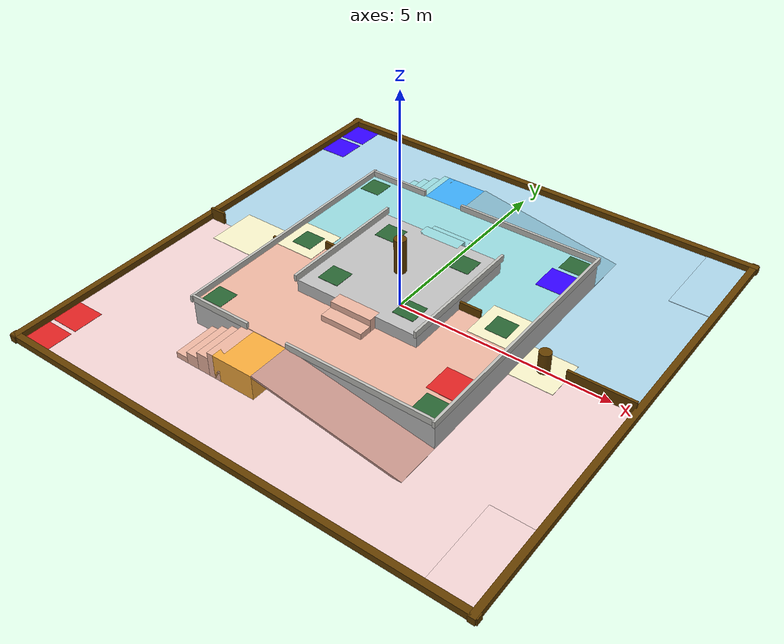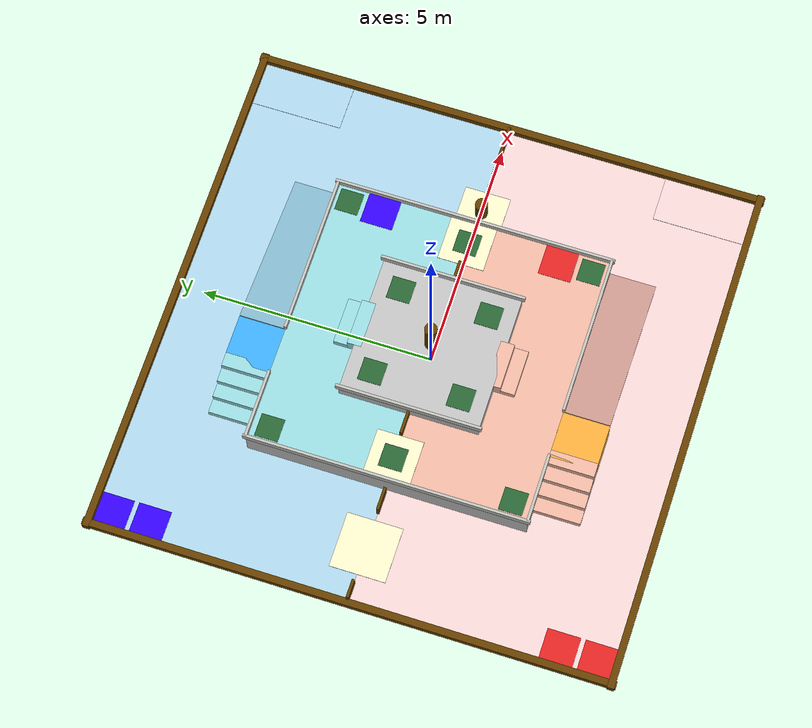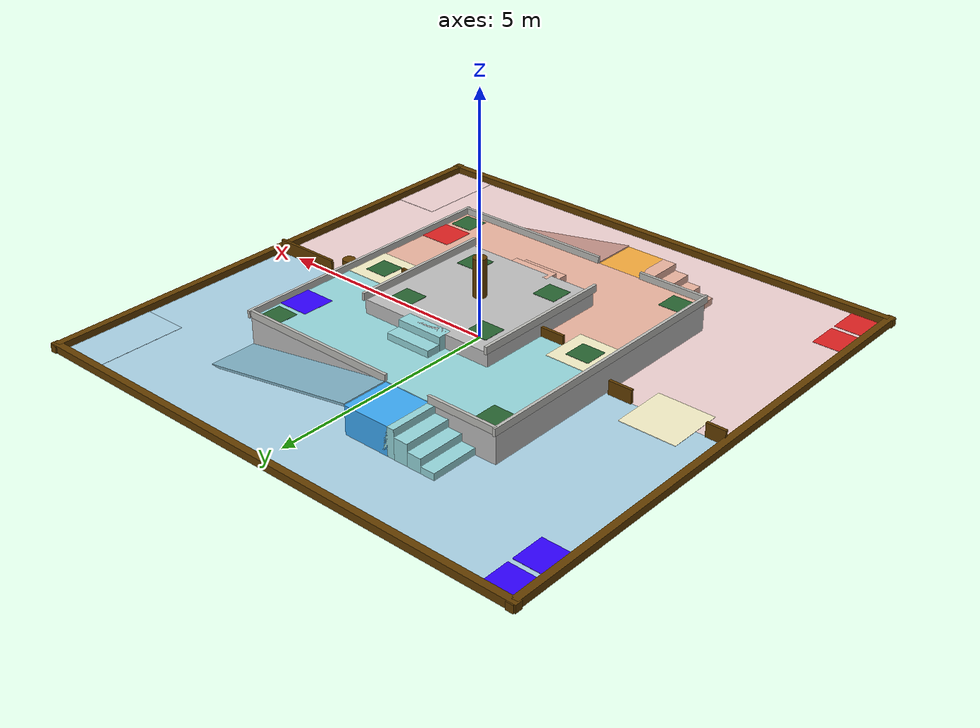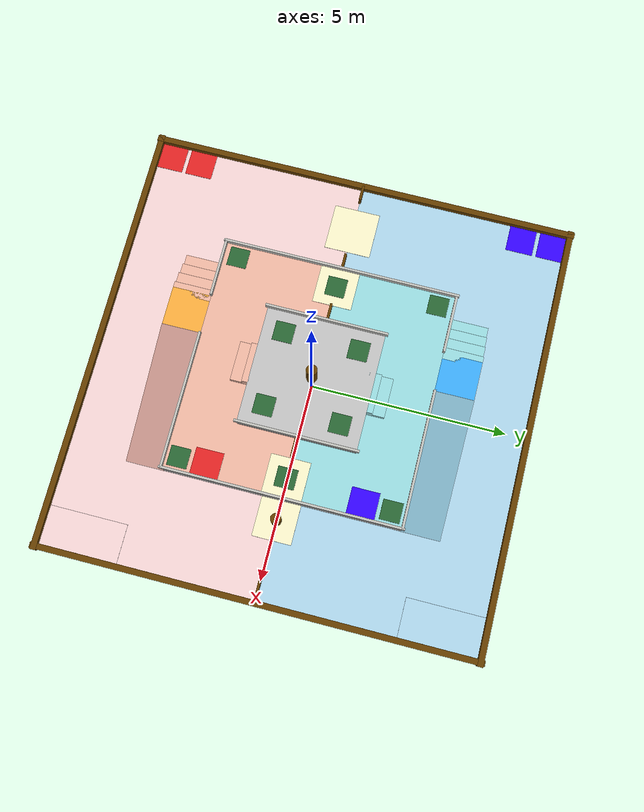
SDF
<?xml version="1.0"?>
<sdf version="1.9">
  <world name="nhk27_field">
    <physics name="1ms" type="ignore">
      <max_step_size>0.001</max_step_size>
      <real_time_factor>1.0</real_time_factor>
    </physics>
    <plugin filename="gz-sim-physics-system" name="gz::sim::systems::Physics"/>
    <plugin filename="gz-sim-user-commands-system" name="gz::sim::systems::UserCommands"/>
    <plugin filename="gz-sim-scene-broadcaster-system" name="gz::sim::systems::SceneBroadcaster"/>
    <plugin filename="gz-sim-contact-system" name="gz::sim::systems::Contact"/>

    <light type="directional" name="sun">
      <cast_shadows>true</cast_shadows>
      <pose>0 0 10 0 0 0</pose>
      <diffuse>0.8 0.8 0.8 1</diffuse>
      <specular>0.2 0.2 0.2 1</specular>
      <direction>-0.5 0.1 -0.9</direction>
    </light>

    <model name="ground_base">
      <static>true</static>
      <pose>0 0 -0.025 0.0 0.0 0.0</pose>
      <link name="link">
        <collision name="collision">
          <geometry><box><size>11.0 11.0 0.05</size></box></geometry>
        </collision>
        <visual name="visual">
          <geometry><box><size>11.0 11.0 0.05</size></box></geometry>
          <material>
            <ambient>0.23 0.18 0.13 1.0</ambient>
            <diffuse>0.23 0.18 0.13 1.0</diffuse>
          </material>
        </visual>
      </link>
    </model>
    <model name="ground_red">
      <static>true</static>
      <pose>0 -2.75 0.006 0.0 0.0 0.0</pose>
      <link name="link">
        <visual name="visual">
          <geometry><box><size>11.0 5.5 0.01</size></box></geometry>
          <material>
            <ambient>0.9411764705882353 0.8235294117647058 0.8235294117647058 1.0</ambient>
            <diffuse>0.9411764705882353 0.8235294117647058 0.8235294117647058 1.0</diffuse>
          </material>
        </visual>
      </link>
    </model>
    <model name="ground_blue">
      <static>true</static>
      <pose>0 2.75 0.006 0.0 0.0 0.0</pose>
      <link name="link">
        <visual name="visual">
          <geometry><box><size>11.0 5.5 0.01</size></box></geometry>
          <material>
            <ambient>0.6666666666666666 0.8235294117647058 0.9019607843137255 1.0</ambient>
            <diffuse>0.6666666666666666 0.8235294117647058 0.9019607843137255 1.0</diffuse>
          </material>
        </visual>
      </link>
    </model>
    <model name="field_boundary_north">
      <static>true</static>
      <pose>5.55 0 0.08 0.0 0.0 0.0</pose>
      <link name="link">
        <collision name="collision">
          <geometry><box><size>0.15 11.3 0.16</size></box></geometry>
        </collision>
        <visual name="visual">
          <geometry><box><size>0.15 11.3 0.16</size></box></geometry>
          <material>
            <ambient>0.39215686274509803 0.24313725490196078 0.0 1.0</ambient>
            <diffuse>0.39215686274509803 0.24313725490196078 0.0 1.0</diffuse>
          </material>
        </visual>
      </link>
    </model>
    <model name="field_boundary_south">
      <static>true</static>
      <pose>-5.55 0 0.08 0.0 0.0 0.0</pose>
      <link name="link">
        <collision name="collision">
          <geometry><box><size>0.15 11.3 0.16</size></box></geometry>
        </collision>
        <visual name="visual">
          <geometry><box><size>0.15 11.3 0.16</size></box></geometry>
          <material>
            <ambient>0.39215686274509803 0.24313725490196078 0.0 1.0</ambient>
            <diffuse>0.39215686274509803 0.24313725490196078 0.0 1.0</diffuse>
          </material>
        </visual>
      </link>
    </model>
    <model name="field_boundary_east">
      <static>true</static>
      <pose>0 5.55 0.08 0.0 0.0 0.0</pose>
      <link name="link">
        <collision name="collision">
          <geometry><box><size>11.3 0.15 0.16</size></box></geometry>
        </collision>
        <visual name="visual">
          <geometry><box><size>11.3 0.15 0.16</size></box></geometry>
          <material>
            <ambient>0.39215686274509803 0.24313725490196078 0.0 1.0</ambient>
            <diffuse>0.39215686274509803 0.24313725490196078 0.0 1.0</diffuse>
          </material>
        </visual>
      </link>
    </model>
    <model name="field_boundary_west">
      <static>true</static>
      <pose>0 -5.55 0.08 0.0 0.0 0.0</pose>
      <link name="link">
        <collision name="collision">
          <geometry><box><size>11.3 0.15 0.16</size></box></geometry>
        </collision>
        <visual name="visual">
          <geometry><box><size>11.3 0.15 0.16</size></box></geometry>
          <material>
            <ambient>0.39215686274509803 0.24313725490196078 0.0 1.0</ambient>
            <diffuse>0.39215686274509803 0.24313725490196078 0.0 1.0</diffuse>
          </material>
        </visual>
      </link>
    </model>
    <model name="level1_structure">
      <static>true</static>
      <pose>0 0 0.3 0.0 0.0 0.0</pose>
      <link name="link">
        <collision name="collision">
          <geometry><box><size>6.0 6.0 0.6</size></box></geometry>
        </collision>
        <visual name="visual">
          <geometry><box><size>6.0 6.0 0.6</size></box></geometry>
          <material>
            <ambient>0.7450980392156863 0.7450980392156863 0.7450980392156863 1.0</ambient>
            <diffuse>0.7450980392156863 0.7450980392156863 0.7450980392156863 1.0</diffuse>
          </material>
        </visual>
      </link>
    </model>
    <model name="level1_red">
      <static>true</static>
      <pose>0 -1.5 0.606 0.0 0.0 0.0</pose>
      <link name="link">
        <visual name="visual">
          <geometry><box><size>6.0 3.0 0.01</size></box></geometry>
          <material>
            <ambient>0.9215686274509803 0.7058823529411765 0.6274509803921569 1.0</ambient>
            <diffuse>0.9215686274509803 0.7058823529411765 0.6274509803921569 1.0</diffuse>
          </material>
        </visual>
      </link>
    </model>
    <model name="level1_blue">
      <static>true</static>
      <pose>0 1.5 0.606 0.0 0.0 0.0</pose>
      <link name="link">
        <visual name="visual">
          <geometry><box><size>6.0 3.0 0.01</size></box></geometry>
          <material>
            <ambient>0.5882352941176471 0.8431372549019608 0.8627450980392157 1.0</ambient>
            <diffuse>0.5882352941176471 0.8431372549019608 0.8627450980392157 1.0</diffuse>
          </material>
        </visual>
      </link>
    </model>
    <model name="level2_structure">
      <static>true</static>
      <pose>0 0 0.75 0.0 0.0 0.0</pose>
      <link name="link">
        <collision name="collision">
          <geometry><box><size>3.0 3.0 0.30000000000000004</size></box></geometry>
        </collision>
        <visual name="visual">
          <geometry><box><size>3.0 3.0 0.30000000000000004</size></box></geometry>
          <material>
            <ambient>0.7450980392156863 0.7450980392156863 0.7450980392156863 1.0</ambient>
            <diffuse>0.7450980392156863 0.7450980392156863 0.7450980392156863 1.0</diffuse>
          </material>
        </visual>
      </link>
    </model>
    <model name="central_pillar">
      <static>true</static>
      <pose>0 0 1.3 0 0 0</pose>
      <link name="link">
        <collision name="collision">
          <geometry><cylinder><radius>0.135</radius><length>0.8</length></cylinder></geometry>
        </collision>
        <visual name="visual">
          <geometry><cylinder><radius>0.135</radius><length>0.8</length></cylinder></geometry>
          <material>
            <ambient>0.39215686274509803 0.24313725490196078 0.0 1.0</ambient>
            <diffuse>0.39215686274509803 0.24313725490196078 0.0 1.0</diffuse>
          </material>
        </visual>
      </link>
    </model>
    <model name="mustika_pad">
      <static>true</static>
      <pose>3.5 0.0 0.014 0.0 0.0 0.0</pose>
      <link name="link">
        <visual name="visual">
          <geometry><box><size>1.0 1.0 0.01</size></box></geometry>
          <material>
            <ambient>0.9607843137254902 0.9411764705882353 0.7843137254901961 1.0</ambient>
            <diffuse>0.9607843137254902 0.9411764705882353 0.7843137254901961 1.0</diffuse>
          </material>
        </visual>
      </link>
    </model>
    <model name="mustika_pillar">
      <static>true</static>
      <pose>3.5 0 0.25 0 0 0</pose>
      <link name="link">
        <collision name="collision">
          <geometry><cylinder><radius>0.135</radius><length>0.5</length></cylinder></geometry>
        </collision>
        <visual name="visual">
          <geometry><cylinder><radius>0.135</radius><length>0.5</length></cylinder></geometry>
          <material>
            <ambient>0.39215686274509803 0.24313725490196078 0.0 1.0</ambient>
            <diffuse>0.39215686274509803 0.24313725490196078 0.0 1.0</diffuse>
          </material>
        </visual>
      </link>
    </model>
    <model name="ramp_red">
      <static>true</static>
      <pose>1.25 -3.5 0.3 0.0 0.16977827396833844 0.0</pose>
      <link name="link">
        <collision name="collision">
          <geometry><box><size>3.5510561809129406 1.0 0.05</size></box></geometry>
        </collision>
        <visual name="visual">
          <geometry><box><size>3.5510561809129406 1.0 0.05</size></box></geometry>
          <material>
            <ambient>0.7843137254901961 0.5882352941176471 0.5490196078431373 1.0</ambient>
            <diffuse>0.7843137254901961 0.5882352941176471 0.5490196078431373 1.0</diffuse>
          </material>
        </visual>
      </link>
    </model>
    <model name="transfer_area_red">
      <static>true</static>
      <pose>-1.0 -3.5 0.3 0.0 0.0 0.0</pose>
      <link name="link">
        <collision name="collision">
          <geometry><box><size>1.0 1.0 0.6</size></box></geometry>
        </collision>
        <visual name="visual">
          <geometry><box><size>1.0 1.0 0.6</size></box></geometry>
          <material>
            <ambient>0.9607843137254902 0.6666666666666666 0.23529411764705882 1.0</ambient>
            <diffuse>0.9607843137254902 0.6666666666666666 0.23529411764705882 1.0</diffuse>
          </material>
        </visual>
      </link>
    </model>
    <model name="stairs_g2l1_red_step1">
      <static>true</static>
      <pose>-2.4 -3.5 0.075 0.0 0.0 0.0</pose>
      <link name="link">
        <collision name="collision">
          <geometry><box><size>0.3 1.0 0.15</size></box></geometry>
        </collision>
        <visual name="visual">
          <geometry><box><size>0.3 1.0 0.15</size></box></geometry>
          <material>
            <ambient>0.9215686274509803 0.7058823529411765 0.6274509803921569 1.0</ambient>
            <diffuse>0.9215686274509803 0.7058823529411765 0.6274509803921569 1.0</diffuse>
          </material>
        </visual>
      </link>
    </model>
    <model name="stairs_g2l1_red_step2">
      <static>true</static>
      <pose>-2.1 -3.5 0.15 0.0 0.0 0.0</pose>
      <link name="link">
        <collision name="collision">
          <geometry><box><size>0.3 1.0 0.3</size></box></geometry>
        </collision>
        <visual name="visual">
          <geometry><box><size>0.3 1.0 0.3</size></box></geometry>
          <material>
            <ambient>0.9215686274509803 0.7058823529411765 0.6274509803921569 1.0</ambient>
            <diffuse>0.9215686274509803 0.7058823529411765 0.6274509803921569 1.0</diffuse>
          </material>
        </visual>
      </link>
    </model>
    <model name="stairs_g2l1_red_step3">
      <static>true</static>
      <pose>-1.8 -3.5 0.22499999999999998 0.0 0.0 0.0</pose>
      <link name="link">
        <collision name="collision">
          <geometry><box><size>0.3 1.0 0.44999999999999996</size></box></geometry>
        </collision>
        <visual name="visual">
          <geometry><box><size>0.3 1.0 0.44999999999999996</size></box></geometry>
          <material>
            <ambient>0.9215686274509803 0.7058823529411765 0.6274509803921569 1.0</ambient>
            <diffuse>0.9215686274509803 0.7058823529411765 0.6274509803921569 1.0</diffuse>
          </material>
        </visual>
      </link>
    </model>
    <model name="stairs_g2l1_red_step4">
      <static>true</static>
      <pose>-1.5 -3.5 0.3 0.0 0.0 0.0</pose>
      <link name="link">
        <collision name="collision">
          <geometry><box><size>0.3 1.0 0.6</size></box></geometry>
        </collision>
        <visual name="visual">
          <geometry><box><size>0.3 1.0 0.6</size></box></geometry>
          <material>
            <ambient>0.9215686274509803 0.7058823529411765 0.6274509803921569 1.0</ambient>
            <diffuse>0.9215686274509803 0.7058823529411765 0.6274509803921569 1.0</diffuse>
          </material>
        </visual>
      </link>
    </model>
    <model name="ramp_blue">
      <static>true</static>
      <pose>1.25 3.5 0.3 0.0 0.16977827396833844 0.0</pose>
      <link name="link">
        <collision name="collision">
          <geometry><box><size>3.5510561809129406 1.0 0.05</size></box></geometry>
        </collision>
        <visual name="visual">
          <geometry><box><size>3.5510561809129406 1.0 0.05</size></box></geometry>
          <material>
            <ambient>0.5098039215686274 0.7058823529411765 0.7843137254901961 1.0</ambient>
            <diffuse>0.5098039215686274 0.7058823529411765 0.7843137254901961 1.0</diffuse>
          </material>
        </visual>
      </link>
    </model>
    <model name="transfer_area_blue">
      <static>true</static>
      <pose>-1.0 3.5 0.3 0.0 0.0 0.0</pose>
      <link name="link">
        <collision name="collision">
          <geometry><box><size>1.0 1.0 0.6</size></box></geometry>
        </collision>
        <visual name="visual">
          <geometry><box><size>1.0 1.0 0.6</size></box></geometry>
          <material>
            <ambient>0.23529411764705882 0.6666666666666666 0.9607843137254902 1.0</ambient>
            <diffuse>0.23529411764705882 0.6666666666666666 0.9607843137254902 1.0</diffuse>
          </material>
        </visual>
      </link>
    </model>
    <model name="stairs_g2l1_blue_step1">
      <static>true</static>
      <pose>-2.4 3.5 0.075 0.0 0.0 0.0</pose>
      <link name="link">
        <collision name="collision">
          <geometry><box><size>0.3 1.0 0.15</size></box></geometry>
        </collision>
        <visual name="visual">
          <geometry><box><size>0.3 1.0 0.15</size></box></geometry>
          <material>
            <ambient>0.5882352941176471 0.8431372549019608 0.8627450980392157 1.0</ambient>
            <diffuse>0.5882352941176471 0.8431372549019608 0.8627450980392157 1.0</diffuse>
          </material>
        </visual>
      </link>
    </model>
    <model name="stairs_g2l1_blue_step2">
      <static>true</static>
      <pose>-2.1 3.5 0.15 0.0 0.0 0.0</pose>
      <link name="link">
        <collision name="collision">
          <geometry><box><size>0.3 1.0 0.3</size></box></geometry>
        </collision>
        <visual name="visual">
          <geometry><box><size>0.3 1.0 0.3</size></box></geometry>
          <material>
            <ambient>0.5882352941176471 0.8431372549019608 0.8627450980392157 1.0</ambient>
            <diffuse>0.5882352941176471 0.8431372549019608 0.8627450980392157 1.0</diffuse>
          </material>
        </visual>
      </link>
    </model>
    <model name="stairs_g2l1_blue_step3">
      <static>true</static>
      <pose>-1.8 3.5 0.22499999999999998 0.0 0.0 0.0</pose>
      <link name="link">
        <collision name="collision">
          <geometry><box><size>0.3 1.0 0.44999999999999996</size></box></geometry>
        </collision>
        <visual name="visual">
          <geometry><box><size>0.3 1.0 0.44999999999999996</size></box></geometry>
          <material>
            <ambient>0.5882352941176471 0.8431372549019608 0.8627450980392157 1.0</ambient>
            <diffuse>0.5882352941176471 0.8431372549019608 0.8627450980392157 1.0</diffuse>
          </material>
        </visual>
      </link>
    </model>
    <model name="stairs_g2l1_blue_step4">
      <static>true</static>
      <pose>-1.5 3.5 0.3 0.0 0.0 0.0</pose>
      <link name="link">
        <collision name="collision">
          <geometry><box><size>0.3 1.0 0.6</size></box></geometry>
        </collision>
        <visual name="visual">
          <geometry><box><size>0.3 1.0 0.6</size></box></geometry>
          <material>
            <ambient>0.5882352941176471 0.8431372549019608 0.8627450980392157 1.0</ambient>
            <diffuse>0.5882352941176471 0.8431372549019608 0.8627450980392157 1.0</diffuse>
          </material>
        </visual>
      </link>
    </model>
    <model name="stairs_l1l2_red_step1">
      <static>true</static>
      <pose>0.0 -1.8 0.375 0.0 0.0 0.0</pose>
      <link name="link">
        <collision name="collision">
          <geometry><box><size>1.0 0.3 0.75</size></box></geometry>
        </collision>
        <visual name="visual">
          <geometry><box><size>1.0 0.3 0.75</size></box></geometry>
          <material>
            <ambient>0.9215686274509803 0.7058823529411765 0.6274509803921569 1.0</ambient>
            <diffuse>0.9215686274509803 0.7058823529411765 0.6274509803921569 1.0</diffuse>
          </material>
        </visual>
      </link>
    </model>
    <model name="stairs_l1l2_red_step2">
      <static>true</static>
      <pose>0.0 -1.5 0.44999999999999996 0.0 0.0 0.0</pose>
      <link name="link">
        <collision name="collision">
          <geometry><box><size>1.0 0.3 0.8999999999999999</size></box></geometry>
        </collision>
        <visual name="visual">
          <geometry><box><size>1.0 0.3 0.8999999999999999</size></box></geometry>
          <material>
            <ambient>0.9215686274509803 0.7058823529411765 0.6274509803921569 1.0</ambient>
            <diffuse>0.9215686274509803 0.7058823529411765 0.6274509803921569 1.0</diffuse>
          </material>
        </visual>
      </link>
    </model>
    <model name="stairs_l1l2_blue_step1">
      <static>true</static>
      <pose>0.0 1.8 0.375 0.0 0.0 0.0</pose>
      <link name="link">
        <collision name="collision">
          <geometry><box><size>1.0 0.3 0.75</size></box></geometry>
        </collision>
        <visual name="visual">
          <geometry><box><size>1.0 0.3 0.75</size></box></geometry>
          <material>
            <ambient>0.5882352941176471 0.8431372549019608 0.8627450980392157 1.0</ambient>
            <diffuse>0.5882352941176471 0.8431372549019608 0.8627450980392157 1.0</diffuse>
          </material>
        </visual>
      </link>
    </model>
    <model name="stairs_l1l2_blue_step2">
      <static>true</static>
      <pose>0.0 1.5 0.44999999999999996 0.0 0.0 0.0</pose>
      <link name="link">
        <collision name="collision">
          <geometry><box><size>1.0 0.3 0.8999999999999999</size></box></geometry>
        </collision>
        <visual name="visual">
          <geometry><box><size>1.0 0.3 0.8999999999999999</size></box></geometry>
          <material>
            <ambient>0.5882352941176471 0.8431372549019608 0.8627450980392157 1.0</ambient>
            <diffuse>0.5882352941176471 0.8431372549019608 0.8627450980392157 1.0</diffuse>
          </material>
        </visual>
      </link>
    </model>
    <model name="l1_barrier_north">
      <static>true</static>
      <pose>3.0 0.0 0.6749999999999999 0.0 0.0 0.0</pose>
      <link name="link">
        <collision name="collision">
          <geometry><box><size>0.06 6.12 0.15</size></box></geometry>
        </collision>
        <visual name="visual">
          <geometry><box><size>0.06 6.12 0.15</size></box></geometry>
          <material>
            <ambient>0.7450980392156863 0.7450980392156863 0.7254901960784313 1.0</ambient>
            <diffuse>0.7450980392156863 0.7450980392156863 0.7254901960784313 1.0</diffuse>
          </material>
        </visual>
      </link>
    </model>
    <model name="l1_barrier_south">
      <static>true</static>
      <pose>-3.0 0.0 0.6749999999999999 0.0 0.0 0.0</pose>
      <link name="link">
        <collision name="collision">
          <geometry><box><size>0.06 6.12 0.15</size></box></geometry>
        </collision>
        <visual name="visual">
          <geometry><box><size>0.06 6.12 0.15</size></box></geometry>
          <material>
            <ambient>0.7450980392156863 0.7450980392156863 0.7254901960784313 1.0</ambient>
            <diffuse>0.7450980392156863 0.7450980392156863 0.7254901960784313 1.0</diffuse>
          </material>
        </visual>
      </link>
    </model>
    <model name="l1_barrier_west_south">
      <static>true</static>
      <pose>-2.25 -3.0 0.6749999999999999 0.0 0.0 0.0</pose>
      <link name="link">
        <collision name="collision">
          <geometry><box><size>1.5 0.06 0.15</size></box></geometry>
        </collision>
        <visual name="visual">
          <geometry><box><size>1.5 0.06 0.15</size></box></geometry>
          <material>
            <ambient>0.7450980392156863 0.7450980392156863 0.7254901960784313 1.0</ambient>
            <diffuse>0.7450980392156863 0.7450980392156863 0.7254901960784313 1.0</diffuse>
          </material>
        </visual>
      </link>
    </model>
    <model name="l1_barrier_west_north">
      <static>true</static>
      <pose>1.25 -3.0 0.6749999999999999 0.0 0.0 0.0</pose>
      <link name="link">
        <collision name="collision">
          <geometry><box><size>3.5 0.06 0.15</size></box></geometry>
        </collision>
        <visual name="visual">
          <geometry><box><size>3.5 0.06 0.15</size></box></geometry>
          <material>
            <ambient>0.7450980392156863 0.7450980392156863 0.7254901960784313 1.0</ambient>
            <diffuse>0.7450980392156863 0.7450980392156863 0.7254901960784313 1.0</diffuse>
          </material>
        </visual>
      </link>
    </model>
    <model name="l1_barrier_east_south">
      <static>true</static>
      <pose>-2.25 3.0 0.6749999999999999 0.0 0.0 0.0</pose>
      <link name="link">
        <collision name="collision">
          <geometry><box><size>1.5 0.06 0.15</size></box></geometry>
        </collision>
        <visual name="visual">
          <geometry><box><size>1.5 0.06 0.15</size></box></geometry>
          <material>
            <ambient>0.7450980392156863 0.7450980392156863 0.7254901960784313 1.0</ambient>
            <diffuse>0.7450980392156863 0.7450980392156863 0.7254901960784313 1.0</diffuse>
          </material>
        </visual>
      </link>
    </model>
    <model name="l1_barrier_east_north">
      <static>true</static>
      <pose>1.25 3.0 0.6749999999999999 0.0 0.0 0.0</pose>
      <link name="link">
        <collision name="collision">
          <geometry><box><size>3.5 0.06 0.15</size></box></geometry>
        </collision>
        <visual name="visual">
          <geometry><box><size>3.5 0.06 0.15</size></box></geometry>
          <material>
            <ambient>0.7450980392156863 0.7450980392156863 0.7254901960784313 1.0</ambient>
            <diffuse>0.7450980392156863 0.7450980392156863 0.7254901960784313 1.0</diffuse>
          </material>
        </visual>
      </link>
    </model>
    <model name="l2_wall_north">
      <static>true</static>
      <pose>1.5 0.0 0.975 0.0 0.0 0.0</pose>
      <link name="link">
        <collision name="collision">
          <geometry><box><size>0.06 3.12 0.15</size></box></geometry>
        </collision>
        <visual name="visual">
          <geometry><box><size>0.06 3.12 0.15</size></box></geometry>
          <material>
            <ambient>0.7450980392156863 0.7450980392156863 0.7254901960784313 1.0</ambient>
            <diffuse>0.7450980392156863 0.7450980392156863 0.7254901960784313 1.0</diffuse>
          </material>
        </visual>
      </link>
    </model>
    <model name="l2_wall_south">
      <static>true</static>
      <pose>-1.5 0.0 0.975 0.0 0.0 0.0</pose>
      <link name="link">
        <collision name="collision">
          <geometry><box><size>0.06 3.12 0.15</size></box></geometry>
        </collision>
        <visual name="visual">
          <geometry><box><size>0.06 3.12 0.15</size></box></geometry>
          <material>
            <ambient>0.7450980392156863 0.7450980392156863 0.7254901960784313 1.0</ambient>
            <diffuse>0.7450980392156863 0.7450980392156863 0.7254901960784313 1.0</diffuse>
          </material>
        </visual>
      </link>
    </model>
    <model name="center_divider_ground_north">
      <static>true</static>
      <pose>4.75 0.0 0.15 0.0 0.0 0.0</pose>
      <link name="link">
        <collision name="collision">
          <geometry><box><size>1.5 0.06 0.3</size></box></geometry>
        </collision>
        <visual name="visual">
          <geometry><box><size>1.5 0.06 0.3</size></box></geometry>
          <material>
            <ambient>0.39215686274509803 0.24313725490196078 0.0 1.0</ambient>
            <diffuse>0.39215686274509803 0.24313725490196078 0.0 1.0</diffuse>
          </material>
        </visual>
      </link>
    </model>
    <model name="center_divider_ground_south1">
      <static>true</static>
      <pose>-3.3 0.0 0.15 0.0 0.0 0.0</pose>
      <link name="link">
        <collision name="collision">
          <geometry><box><size>0.5 0.06 0.3</size></box></geometry>
        </collision>
        <visual name="visual">
          <geometry><box><size>0.5 0.06 0.3</size></box></geometry>
          <material>
            <ambient>0.39215686274509803 0.24313725490196078 0.0 1.0</ambient>
            <diffuse>0.39215686274509803 0.24313725490196078 0.0 1.0</diffuse>
          </material>
        </visual>
      </link>
    </model>
    <model name="center_divider_ground_south2">
      <static>true</static>
      <pose>-5.3 0.0 0.15 0.0 0.0 0.0</pose>
      <link name="link">
        <collision name="collision">
          <geometry><box><size>0.4 0.06 0.3</size></box></geometry>
        </collision>
        <visual name="visual">
          <geometry><box><size>0.4 0.06 0.3</size></box></geometry>
          <material>
            <ambient>0.39215686274509803 0.24313725490196078 0.0 1.0</ambient>
            <diffuse>0.39215686274509803 0.24313725490196078 0.0 1.0</diffuse>
          </material>
        </visual>
      </link>
    </model>
    <model name="center_divider_l1_north">
      <static>true</static>
      <pose>1.75 0.0 0.7 0.0 0.0 0.0</pose>
      <link name="link">
        <collision name="collision">
          <geometry><box><size>0.5 0.06 0.2</size></box></geometry>
        </collision>
        <visual name="visual">
          <geometry><box><size>0.5 0.06 0.2</size></box></geometry>
          <material>
            <ambient>0.39215686274509803 0.24313725490196078 0.0 1.0</ambient>
            <diffuse>0.39215686274509803 0.24313725490196078 0.0 1.0</diffuse>
          </material>
        </visual>
      </link>
    </model>
    <model name="center_divider_l1_south">
      <static>true</static>
      <pose>-1.75 0.0 0.7 0.0 0.0 0.0</pose>
      <link name="link">
        <collision name="collision">
          <geometry><box><size>0.5 0.06 0.2</size></box></geometry>
        </collision>
        <visual name="visual">
          <geometry><box><size>0.5 0.06 0.2</size></box></geometry>
          <material>
            <ambient>0.39215686274509803 0.24313725490196078 0.0 1.0</ambient>
            <diffuse>0.39215686274509803 0.24313725490196078 0.0 1.0</diffuse>
          </material>
        </visual>
      </link>
    </model>
    <model name="start_zone_red_a">
      <static>true</static>
      <pose>-5.15 -5.15 0.014 0.0 0.0 0.0</pose>
      <link name="link">
        <visual name="visual">
          <geometry><box><size>0.7 0.7 0.01</size></box></geometry>
          <material>
            <ambient>0.8745098039215686 0.13333333333333333 0.13333333333333333 1.0</ambient>
            <diffuse>0.8745098039215686 0.13333333333333333 0.13333333333333333 1.0</diffuse>
          </material>
        </visual>
      </link>
    </model>
    <model name="start_zone_red_b">
      <static>true</static>
      <pose>-5.15 -4.35 0.014 0.0 0.0 0.0</pose>
      <link name="link">
        <visual name="visual">
          <geometry><box><size>0.7 0.7 0.01</size></box></geometry>
          <material>
            <ambient>0.8745098039215686 0.13333333333333333 0.13333333333333333 1.0</ambient>
            <diffuse>0.8745098039215686 0.13333333333333333 0.13333333333333333 1.0</diffuse>
          </material>
        </visual>
      </link>
    </model>
    <model name="start_zone_blue_a">
      <static>true</static>
      <pose>-5.15 5.15 0.014 0.0 0.0 0.0</pose>
      <link name="link">
        <visual name="visual">
          <geometry><box><size>0.7 0.7 0.01</size></box></geometry>
          <material>
            <ambient>0.19607843137254902 0.0 1.0 1.0</ambient>
            <diffuse>0.19607843137254902 0.0 1.0 1.0</diffuse>
          </material>
        </visual>
      </link>
    </model>
    <model name="start_zone_blue_b">
      <static>true</static>
      <pose>-5.15 4.35 0.014 0.0 0.0 0.0</pose>
      <link name="link">
        <visual name="visual">
          <geometry><box><size>0.7 0.7 0.01</size></box></geometry>
          <material>
            <ambient>0.19607843137254902 0.0 1.0 1.0</ambient>
            <diffuse>0.19607843137254902 0.0 1.0 1.0</diffuse>
          </material>
        </visual>
      </link>
    </model>
    <model name="storage_red">
      <static>true</static>
      <pose>5.0 -4.5 0.014 0.0 0.0 0.0</pose>
      <link name="link">
        <visual name="visual">
          <geometry><box><size>1.0 2.0 0.01</size></box></geometry>
          <material>
            <ambient>0.9411764705882353 0.8235294117647058 0.8235294117647058 1.0</ambient>
            <diffuse>0.9411764705882353 0.8235294117647058 0.8235294117647058 1.0</diffuse>
          </material>
        </visual>
      </link>
    </model>
    <model name="storage_blue">
      <static>true</static>
      <pose>5.0 4.5 0.014 0.0 0.0 0.0</pose>
      <link name="link">
        <visual name="visual">
          <geometry><box><size>1.0 2.0 0.01</size></box></geometry>
          <material>
            <ambient>0.6666666666666666 0.8235294117647058 0.9019607843137255 1.0</ambient>
            <diffuse>0.6666666666666666 0.8235294117647058 0.9019607843137255 1.0</diffuse>
          </material>
        </visual>
      </link>
    </model>
    <model name="ground_shared_area">
      <static>true</static>
      <pose>-4.3 0.0 0.014 0.0 0.0 0.0</pose>
      <link name="link">
        <visual name="visual">
          <geometry><box><size>1.2 1.2 0.01</size></box></geometry>
          <material>
            <ambient>0.9607843137254902 0.9411764705882353 0.7843137254901961 1.0</ambient>
            <diffuse>0.9607843137254902 0.9411764705882353 0.7843137254901961 1.0</diffuse>
          </material>
        </visual>
      </link>
    </model>
    <model name="l1_retry_zone_red">
      <static>true</static>
      <pose>2.65 -1.95 0.614 0.0 0.0 0.0</pose>
      <link name="link">
        <visual name="visual">
          <geometry><box><size>0.7 0.7 0.01</size></box></geometry>
          <material>
            <ambient>0.8745098039215686 0.13333333333333333 0.13333333333333333 1.0</ambient>
            <diffuse>0.8745098039215686 0.13333333333333333 0.13333333333333333 1.0</diffuse>
          </material>
        </visual>
      </link>
    </model>
    <model name="l1_retry_zone_blue">
      <static>true</static>
      <pose>2.65 1.95 0.614 0.0 0.0 0.0</pose>
      <link name="link">
        <visual name="visual">
          <geometry><box><size>0.7 0.7 0.01</size></box></geometry>
          <material>
            <ambient>0.19607843137254902 0.0 1.0 1.0</ambient>
            <diffuse>0.19607843137254902 0.0 1.0 1.0</diffuse>
          </material>
        </visual>
      </link>
    </model>
    <model name="building_spot_l1_red_north">
      <static>true</static>
      <pose>2.65 -2.65 0.614 0.0 0.0 0.0</pose>
      <link name="link">
        <visual name="visual">
          <geometry><box><size>0.5 0.5 0.01</size></box></geometry>
          <material>
            <ambient>0.1568627450980392 0.39215686274509803 0.19607843137254902 1.0</ambient>
            <diffuse>0.1568627450980392 0.39215686274509803 0.19607843137254902 1.0</diffuse>
          </material>
        </visual>
      </link>
    </model>
    <model name="building_spot_l1_red_south">
      <static>true</static>
      <pose>-2.65 -2.6 0.614 0.0 0.0 0.0</pose>
      <link name="link">
        <visual name="visual">
          <geometry><box><size>0.5 0.5 0.01</size></box></geometry>
          <material>
            <ambient>0.1568627450980392 0.39215686274509803 0.19607843137254902 1.0</ambient>
            <diffuse>0.1568627450980392 0.39215686274509803 0.19607843137254902 1.0</diffuse>
          </material>
        </visual>
      </link>
    </model>
    <model name="building_spot_l1_blue_north">
      <static>true</static>
      <pose>2.65 2.65 0.614 0.0 0.0 0.0</pose>
      <link name="link">
        <visual name="visual">
          <geometry><box><size>0.5 0.5 0.01</size></box></geometry>
          <material>
            <ambient>0.1568627450980392 0.39215686274509803 0.19607843137254902 1.0</ambient>
            <diffuse>0.1568627450980392 0.39215686274509803 0.19607843137254902 1.0</diffuse>
          </material>
        </visual>
      </link>
    </model>
    <model name="building_spot_l1_blue_south">
      <static>true</static>
      <pose>-2.65 2.6 0.614 0.0 0.0 0.0</pose>
      <link name="link">
        <visual name="visual">
          <geometry><box><size>0.5 0.5 0.01</size></box></geometry>
          <material>
            <ambient>0.1568627450980392 0.39215686274509803 0.19607843137254902 1.0</ambient>
            <diffuse>0.1568627450980392 0.39215686274509803 0.19607843137254902 1.0</diffuse>
          </material>
        </visual>
      </link>
    </model>
    <model name="l1_shared_pad_north">
      <static>true</static>
      <pose>2.5 0.0 0.614 0.0 0.0 0.0</pose>
      <link name="link">
        <visual name="visual">
          <geometry><box><size>1.0 1.0 0.01</size></box></geometry>
          <material>
            <ambient>0.9607843137254902 0.9411764705882353 0.7843137254901961 1.0</ambient>
            <diffuse>0.9607843137254902 0.9411764705882353 0.7843137254901961 1.0</diffuse>
          </material>
        </visual>
      </link>
    </model>
    <model name="l1_shared_pad_south">
      <static>true</static>
      <pose>-2.5 0.0 0.614 0.0 0.0 0.0</pose>
      <link name="link">
        <visual name="visual">
          <geometry><box><size>1.0 1.0 0.01</size></box></geometry>
          <material>
            <ambient>0.9607843137254902 0.9411764705882353 0.7843137254901961 1.0</ambient>
            <diffuse>0.9607843137254902 0.9411764705882353 0.7843137254901961 1.0</diffuse>
          </material>
        </visual>
      </link>
    </model>
    <model name="building_spot_l1_shared_north">
      <static>true</static>
      <pose>2.5 0.0 0.622 0.0 0.0 0.0</pose>
      <link name="link">
        <visual name="visual">
          <geometry><box><size>0.5 0.5 0.01</size></box></geometry>
          <material>
            <ambient>0.1568627450980392 0.39215686274509803 0.19607843137254902 1.0</ambient>
            <diffuse>0.1568627450980392 0.39215686274509803 0.19607843137254902 1.0</diffuse>
          </material>
        </visual>
      </link>
    </model>
    <model name="building_spot_l1_shared_south">
      <static>true</static>
      <pose>-2.5 0.0 0.622 0.0 0.0 0.0</pose>
      <link name="link">
        <visual name="visual">
          <geometry><box><size>0.5 0.5 0.01</size></box></geometry>
          <material>
            <ambient>0.1568627450980392 0.39215686274509803 0.19607843137254902 1.0</ambient>
            <diffuse>0.1568627450980392 0.39215686274509803 0.19607843137254902 1.0</diffuse>
          </material>
        </visual>
      </link>
    </model>
    <model name="building_spot_l2_sw">
      <static>true</static>
      <pose>-0.95 -0.95 0.914 0.0 0.0 0.0</pose>
      <link name="link">
        <visual name="visual">
          <geometry><box><size>0.5 0.5 0.01</size></box></geometry>
          <material>
            <ambient>0.1568627450980392 0.39215686274509803 0.19607843137254902 1.0</ambient>
            <diffuse>0.1568627450980392 0.39215686274509803 0.19607843137254902 1.0</diffuse>
          </material>
        </visual>
      </link>
    </model>
    <model name="building_spot_l2_se">
      <static>true</static>
      <pose>-0.95 0.95 0.914 0.0 0.0 0.0</pose>
      <link name="link">
        <visual name="visual">
          <geometry><box><size>0.5 0.5 0.01</size></box></geometry>
          <material>
            <ambient>0.1568627450980392 0.39215686274509803 0.19607843137254902 1.0</ambient>
            <diffuse>0.1568627450980392 0.39215686274509803 0.19607843137254902 1.0</diffuse>
          </material>
        </visual>
      </link>
    </model>
    <model name="building_spot_l2_nw">
      <static>true</static>
      <pose>0.95 -0.95 0.914 0.0 0.0 0.0</pose>
      <link name="link">
        <visual name="visual">
          <geometry><box><size>0.5 0.5 0.01</size></box></geometry>
          <material>
            <ambient>0.1568627450980392 0.39215686274509803 0.19607843137254902 1.0</ambient>
            <diffuse>0.1568627450980392 0.39215686274509803 0.19607843137254902 1.0</diffuse>
          </material>
        </visual>
      </link>
    </model>
    <model name="building_spot_l2_ne">
      <static>true</static>
      <pose>0.95 0.95 0.914 0.0 0.0 0.0</pose>
      <link name="link">
        <visual name="visual">
          <geometry><box><size>0.5 0.5 0.01</size></box></geometry>
          <material>
            <ambient>0.1568627450980392 0.39215686274509803 0.19607843137254902 1.0</ambient>
            <diffuse>0.1568627450980392 0.39215686274509803 0.19607843137254902 1.0</diffuse>
          </material>
        </visual>
      </link>
    </model>
  </world>
</sdf>
